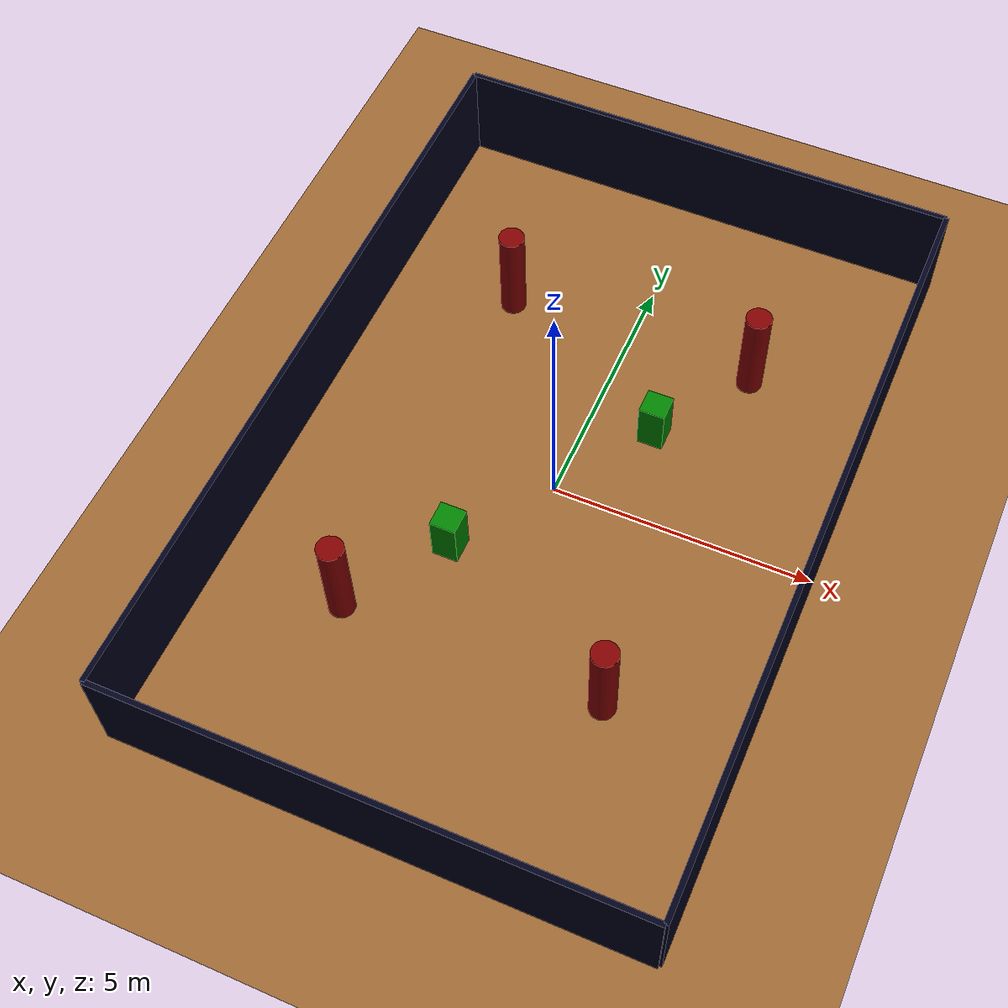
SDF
<?xml version="1.0" ?>
<!-- |    This document was autogenerated by xacro from mast_room.world.xacro          | -->
<!-- |    EDITING THIS FILE BY HAND IS NOT RECOMMENDED                                 | -->
<!-- edit the .xacro file, NOT the .world file
		run
		rosrun xacro xacro thisfile.world..xacro > thisfile.world
		to create the world file -->
<sdf version="1.4">
  <world name="MAST demo room" xmlns:xacro="http://www.ros.org/wiki/xacro">
    <scene>
      <ambient>0.5 0.5 0.5 1</ambient>
      <background>0.5 0.5 0.5 1</background>
      <shadows>false</shadows>
    </scene>
    <physics type="ode">
      <gravity>0 0 -9.81</gravity>
      <ode>
        <solver>
          <type>quick</type>
          <iters>10</iters>
          <sor>1.3</sor>
        </solver>
        <constraints>
          <cfm>0.0</cfm>
          <erp>0.2</erp>
          <contact_max_correcting_vel>10</contact_max_correcting_vel>
          <contact_surface_layer>0.001</contact_surface_layer>
        </constraints>
      </ode>
      <max_step_size>0.001</max_step_size>
    </physics>
    <light name="directional_light_1" type="directional">
      <pose>0 20 20 0.1 0.1 0</pose>
      <diffuse>1 1 1 1</diffuse>
      <specular>1 1 1 1</specular>
      <attenuation>
        <range>300</range>
      </attenuation>
      <direction>0.1 0.1 -1</direction>
      <cast_shadows>false</cast_shadows>
    </light>
    <!-- Ground plane -->
    <model name="ground">
      <static>true</static>
      <link name="ground_link">
        <collision name="collision">
          <geometry>
            <plane>
              <normal>0 0 1</normal>
              <size>10 15</size>
            </plane>
          </geometry>
          <surface>
            <friction>
              <ode>
                <mu>100</mu>
                <mu2>50</mu2>
              </ode>
            </friction>
          </surface>
        </collision>
        <visual name="visual">
          <cast_shadows>false</cast_shadows>
          <geometry>
            <plane>
              <normal>0 0 1</normal>
              <size>10 15</size>
            </plane>
          </geometry>
          <material>
            <ambient>0.6 0.4 0.2 0.0</ambient>
            <diffuse>0.6 0.4 0.2 0.0</diffuse>
          </material>
        </visual>
      </link>
    </model>
    <!-- walls -->
    <model name="wall1">
      <static>true</static>
      <link name="wall1_link">
        <pose>5.0 0 1.0 0 0 0</pose>
        <collision name="collision">
          <geometry>
            <box>
              <size>0.1 15 2</size>
            </box>
          </geometry>
        </collision>
        <visual name="visual">
          <cast_shadows>true</cast_shadows>
          <geometry>
            <box>
              <size>0.1 15 2</size>
            </box>
          </geometry>
          <material>
            <ambient>0.0 0.0 0.1 0.0</ambient>
          </material>
        </visual>
      </link>
    </model>
    <model name="wall1">
      <static>true</static>
      <link name="wall1_link">
        <pose>5.0 0 1.0 0 0 0</pose>
        <collision name="collision">
          <geometry>
            <box>
              <size>0.1 15 2</size>
            </box>
          </geometry>
        </collision>
        <visual name="visual">
          <cast_shadows>true</cast_shadows>
          <geometry>
            <box>
              <size>0.1 15 2</size>
            </box>
          </geometry>
          <material>
            <ambient>0.0 0.0 0.1 0.0</ambient>
          </material>
        </visual>
      </link>
    </model>
    <model name="wall2">
      <static>true</static>
      <link name="wall2_link">
        <pose>-5.0 0 1.0 0 0 0</pose>
        <collision name="collision">
          <geometry>
            <box>
              <size>0.1 15 2</size>
            </box>
          </geometry>
        </collision>
        <visual name="visual">
          <cast_shadows>true</cast_shadows>
          <geometry>
            <box>
              <size>0.1 15 2</size>
            </box>
          </geometry>
          <material>
            <ambient>0.0 0.0 0.1 0.0</ambient>
          </material>
        </visual>
      </link>
    </model>
    <model name="wall3">
      <static>true</static>
      <link name="wall3_link">
        <pose>0 7.5 1.0 0 0 0</pose>
        <collision name="collision">
          <geometry>
            <box>
              <size> 10 0.1 2</size>
            </box>
          </geometry>
        </collision>
        <visual name="visual">
          <cast_shadows>true</cast_shadows>
          <geometry>
            <box>
              <size> 10 0.1 2</size>
            </box>
          </geometry>
          <material>
            <ambient>0.0 0.0 0.1 0.0</ambient>
          </material>
        </visual>
      </link>
    </model>
    <model name="wall4">
      <static>true</static>
      <link name="wall4_link">
        <pose>0 -7.5 1.0 0 0 0</pose>
        <collision name="collision">
          <geometry>
            <box>
              <size> 10 0.1 2</size>
            </box>
          </geometry>
        </collision>
        <visual name="visual">
          <cast_shadows>true</cast_shadows>
          <geometry>
            <box>
              <size> 10 0.1 2</size>
            </box>
          </geometry>
          <material>
            <ambient>0.0 0.0 0.1 0.0</ambient>
          </material>
        </visual>
      </link>
    </model>
    <model name="two">
      <static>true</static>
      <link name="two_link">
        <pose>2.5 3.75 1.0 0 0 0</pose>
        <collision name="collision">
          <geometry>
            <cylinder>
              <radius>0.25</radius>
              <length>2</length>
            </cylinder>
          </geometry>
        </collision>
        <visual name="visual">
          <cast_shadows>true</cast_shadows>
          <geometry>
            <cylinder>
              <radius>0.25</radius>
              <length>2</length>
            </cylinder>
          </geometry>
          <material>
            <ambient>0.5 0.0 0.0 0.0</ambient>
          </material>
        </visual>
      </link>
    </model>
    <model name="three">
      <static>true</static>
      <link name="three_link">
        <pose>-2.5 3.75 1.0 0 0 0</pose>
        <collision name="collision">
          <geometry>
            <cylinder>
              <radius>0.25</radius>
              <length>2</length>
            </cylinder>
          </geometry>
        </collision>
        <visual name="visual">
          <cast_shadows>true</cast_shadows>
          <geometry>
            <cylinder>
              <radius>0.25</radius>
              <length>2</length>
            </cylinder>
          </geometry>
          <material>
            <ambient>0.5 0.0 0.0 0.0</ambient>
          </material>
        </visual>
      </link>
    </model>
    <model name="four">
      <static>true</static>
      <link name="four_link">
        <pose>-2.5 -3.75 1.0 0 0 0</pose>
        <collision name="collision">
          <geometry>
            <cylinder>
              <radius>0.25</radius>
              <length>2</length>
            </cylinder>
          </geometry>
        </collision>
        <visual name="visual">
          <cast_shadows>true</cast_shadows>
          <geometry>
            <cylinder>
              <radius>0.25</radius>
              <length>2</length>
            </cylinder>
          </geometry>
          <material>
            <ambient>0.5 0.0 0.0 0.0</ambient>
          </material>
        </visual>
      </link>
    </model>
    <model name="five">
      <static>true</static>
      <link name="five_link">
        <pose>2.5 -3.75 1.0 0 0 0</pose>
        <collision name="collision">
          <geometry>
            <cylinder>
              <radius>0.25</radius>
              <length>2</length>
            </cylinder>
          </geometry>
        </collision>
        <visual name="visual">
          <cast_shadows>true</cast_shadows>
          <geometry>
            <cylinder>
              <radius>0.25</radius>
              <length>2</length>
            </cylinder>
          </geometry>
          <material>
            <ambient>0.5 0.0 0.0 0.0</ambient>
          </material>
        </visual>
      </link>
    </model>
    <model name="box1">
      <static>true</static>
      <link name="box1_link">
        <pose>-1.25 -1.875 0.5 0 0 0</pose>
        <collision name="collision">
          <geometry>
            <box>
              <size>0.5 0.5 1</size>
            </box>
          </geometry>
        </collision>
        <visual name="visual">
          <cast_shadows>true</cast_shadows>
          <geometry>
            <box>
              <size>0.5 0.5 1</size>
            </box>
          </geometry>
          <material>
            <ambient>0.0 0.5 0.0 0.0</ambient>
          </material>
        </visual>
      </link>
    </model>
    <model name="box2">
      <static>true</static>
      <link name="box2_link">
        <pose>1.25 1.875 0.5 0 0 0</pose>
        <collision name="collision">
          <geometry>
            <box>
              <size>0.5 0.5 1</size>
            </box>
          </geometry>
        </collision>
        <visual name="visual">
          <cast_shadows>true</cast_shadows>
          <geometry>
            <box>
              <size>0.5 0.5 1</size>
            </box>
          </geometry>
          <material>
            <ambient>0.0 0.5 0.0 0.0</ambient>
          </material>
        </visual>
      </link>
    </model>
  </world>
</sdf>
